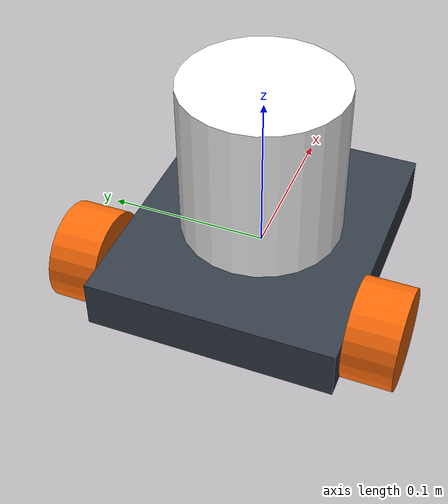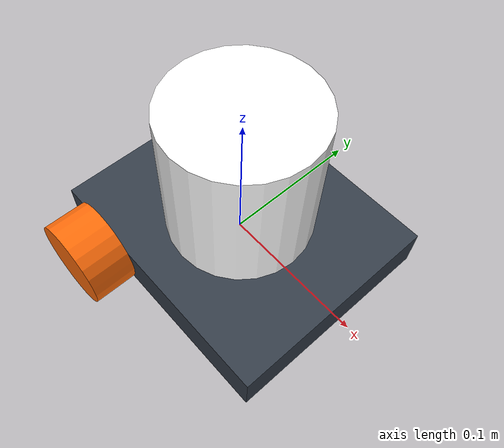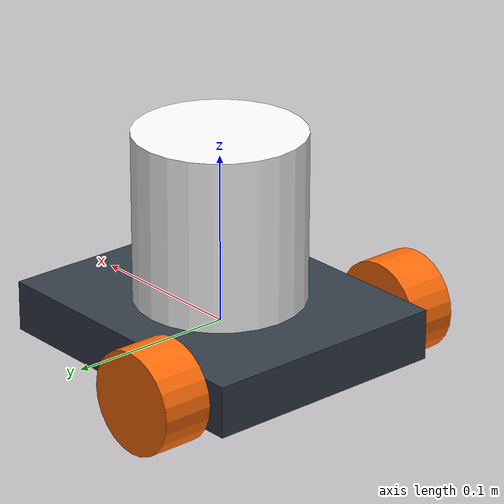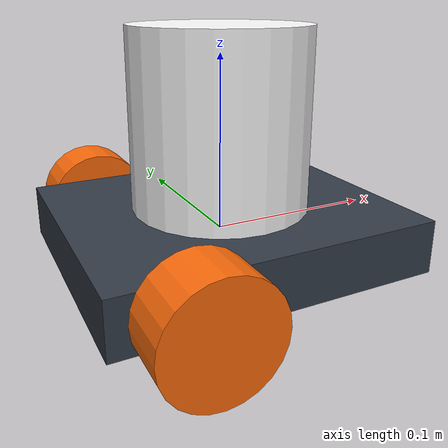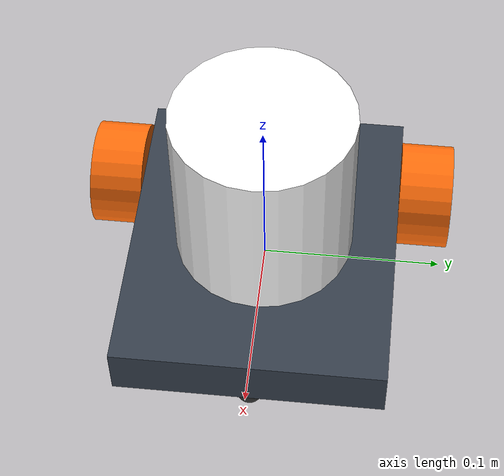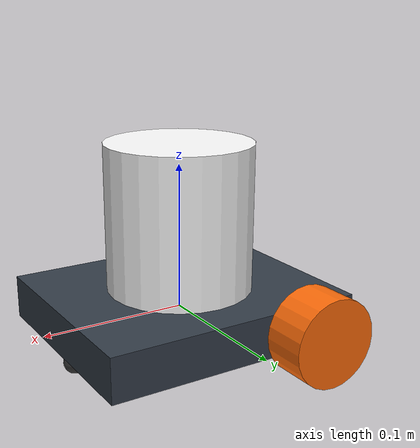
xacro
<?xml version="1.0"?>

<robot name="first" xmlns:xacro="http://www.ros.org/wiki/xacro">

    <material name="black">
        <color rgba="0.0 0.0 0.0 1.0"/>
    </material>
    <material name="blue">
        <color rgba="0.203125 0.23828125 0.28515625 1.0"/>
    </material>
    <material name="green">
        <color rgba="0.0 0.8 0.0 1.0"/>
    </material>
    <material name="grey">
        <color rgba="0.2 0.2 0.2 1.0"/>
    </material>
    <material name="orange">
        <color rgba="1.0 0.423529411765 0.0392156862745 1.0"/>
    </material>
    <material name="brown">
        <color rgba="0.870588235294 0.811764705882 0.764705882353 1.0"/>
    </material>
    <material name="red">
        <color rgba="0.80078125 0.12890625 0.1328125 1.0"/>
    </material>
    <material name="white">
        <color rgba="1.0 1.0 1.0 1.0"/>
    </material>

    <link name="link_body">
        <!-- pose and inertial -->
        <pose>0 0 0.1 0 0 0</pose>
        <inertial>
            <mass value="0.9823"/>
            <origin rpy="0 0 0" xyz="0 0 0.1"/>
            <inertia ixx="0.03418599" ixy="0.005090194" ixz="0.007266956" iyy="0.029073612" iyz="0.014862564" izz="0.015902832"/>
        </inertial>
        <!-- body -->
        <collision name="collision_body">
          <geometry>
            <box size="0.18 0.15 0.03"/>
          </geometry>
        </collision>
        <visual>
          <origin rpy="0 0 0" xyz="0 0 0"/>
          <geometry>
            <box size="0.18 0.15 0.03"/>
          </geometry>
          <material name="blue"/>
        </visual>
        <!-- caster front -->
        <collision name="caster_front_collision">
          <origin rpy=" 0 0 0" xyz="0.01 0 -0.0225"/>
          <geometry>
            <sphere radius="0.0075"/>
          </geometry>
          <surface>
            <friction>
              <ode>
                <mu>0</mu>
                <mu2>0</mu2>
                <slip1>1.0</slip1>
                <slip2>1.0</slip2>
              </ode>
            </friction>
          </surface>
        </collision>
        <visual name="caster_front_visual">
          <origin rpy=" 0 0 0" xyz="0.08 0 -0.0225"/>
          <geometry>
            <sphere radius="0.0075"/>
          </geometry>
          <material name="grey"/>
        </visual>
    </link>
    <!-- L & R Wheel front -->
    <link name="link_right_wheel">
      <inertial>
        <mass value="0.08482"/>
        <origin rpy="0 1.5707 1.5707" xyz="0 0 0"/>
        <inertia ixx="0.000044532" ixy="0" ixz="0" iyy="0.000044532" iyz="0" izz="0.00003817"/>
      </inertial>
      <collision name="link_right_wheel_collision">
        <origin rpy="0 1.5707 1.5707" xyz="0 0 0"/>
        <geometry>
          <cylinder length="0.03" radius="0.03"/>
        </geometry>
      </collision>
      <visual name="link_right_wheel_visual">
        <origin rpy="0 1.5707 1.5707" xyz="0 0 0"/>
        <geometry>
          <cylinder length="0.03" radius="0.03"/>
        </geometry>
        <material name="orange"/>
      </visual>
    </link>

    <joint name="joint_right_wheel" type="continuous">
      <origin rpy="0 0 0" xyz="-0.05 0.09 0"/>
      <child link="link_right_wheel"/>
      <parent link="link_body"/>
      <axis rpy="0 0 0" xyz="0 1 0"/>
      <limit effort="10000" velocity="1000"/>
      <joint_properties damping="1.0" friction="1.0"/>
    </joint>

    <link name="link_left_wheel">
      <inertial>
        <mass value="0.08482"/>
         <origin rpy="0 1.5707 1.5707" xyz="0 0 0"/>
        <inertia ixx="0.000044532" ixy="0" ixz="0" iyy="0.000044532" iyz="0" izz="0.00003817"/>
      </inertial>
      <collision name="link_left_wheel_collision">
        <origin rpy="0 1.5707 1.5707" xyz="0 0 0"/>
        <geometry>
          <cylinder length="0.03" radius="0.03"/>
        </geometry>
      </collision>
      <visual name="link_left_wheel_visual">
        <origin rpy="0 1.5707 1.5707" xyz="0 0 0"/>
        <geometry>
          <cylinder length="0.03" radius="0.03"/>
        </geometry>
        <material name="orange"/>
      </visual>
    </link>

    <joint name="joint_left_wheel" type="continuous">
      <origin rpy="0 0 0" xyz="-0.05 -0.09 0"/>
      <child link="link_left_wheel"/>
      <parent link="link_body"/>
      <axis rpy="0 0 0" xyz="0 1 0"/>
      <limit effort="10000" velocity="1000"/>
      <joint_properties damping="1.0" friction="1.0"/>
    </joint>

    <!-- Laser sensor -->

    <gazebo reference="link_body">
      <material>Gazebo/Orange</material>
    </gazebo>
    <gazebo reference="link_left_wheel">
      <material>Gazebo/Blue</material>
    </gazebo>
    <gazebo reference="link_right_wheel">
      <material>Gazebo/Blue</material>
    </gazebo>

    <link name="sensor_laser">
    <inertial>
        <origin xyz="0 0 0" rpy="0 0 0" />
        <mass value="1" />
        <inertia ixx="0.0031088677" ixy="0" ixz="0" iyy="0.0009817477" iyz="0" izz="0.0031088677"/>
    </inertial>

    <visual>
        <origin xyz="0 0 0" rpy="0 0 0" />
        <geometry>
        <cylinder radius="0.05" length="0.1"/>
        </geometry>
        <material name="white" />
    </visual>

    <collision>
        <origin xyz="0 0 0" rpy="0 0 0"/>
        <geometry>
        <cylinder radius="0.05" length="0.1"/>
        </geometry>
    </collision>
    </link>

    <joint name="joint_sensor_laser" type="fixed">
      <origin xyz="0 0 0.065" rpy="0 0 0"/>
      <parent link="link_body"/>
      <child link="sensor_laser"/>
  </joint>

    <gazebo reference="sensor_laser">
      <sensor type="gpu_ray" name="head_hokuyo_sensor">
        <pose>0 0 0 0 0 0</pose>
        <visualize>false</visualize>
        <update_rate>40</update_rate>
        <ray>
          <scan>
            <horizontal>
              <samples>720</samples>
              <resolution>1</resolution>
              <min_angle>-1.570796</min_angle>
              <max_angle>1.570796</max_angle>
            </horizontal>
          </scan>
          <range>
            <min>0.10</min>
            <max>30.0</max>
            <resolution>0.01</resolution>
          </range>
          <noise>
            <type>gaussian</type>
            <!-- +-30mm" accuracy at range < 10m. -->
            <mean>0.0</mean>
            <stddev>0.01</stddev>
          </noise>
        </ray>
        <plugin name="gazebo_ros_head_hokuyo_controller" filename="libgazebo_ros_gpu_laser.so">
          <topicName>/room/laser/scan</topicName>
          <frameName>sensor_laser</frameName>
        </plugin>
      </sensor>
    </gazebo>

</robot>
